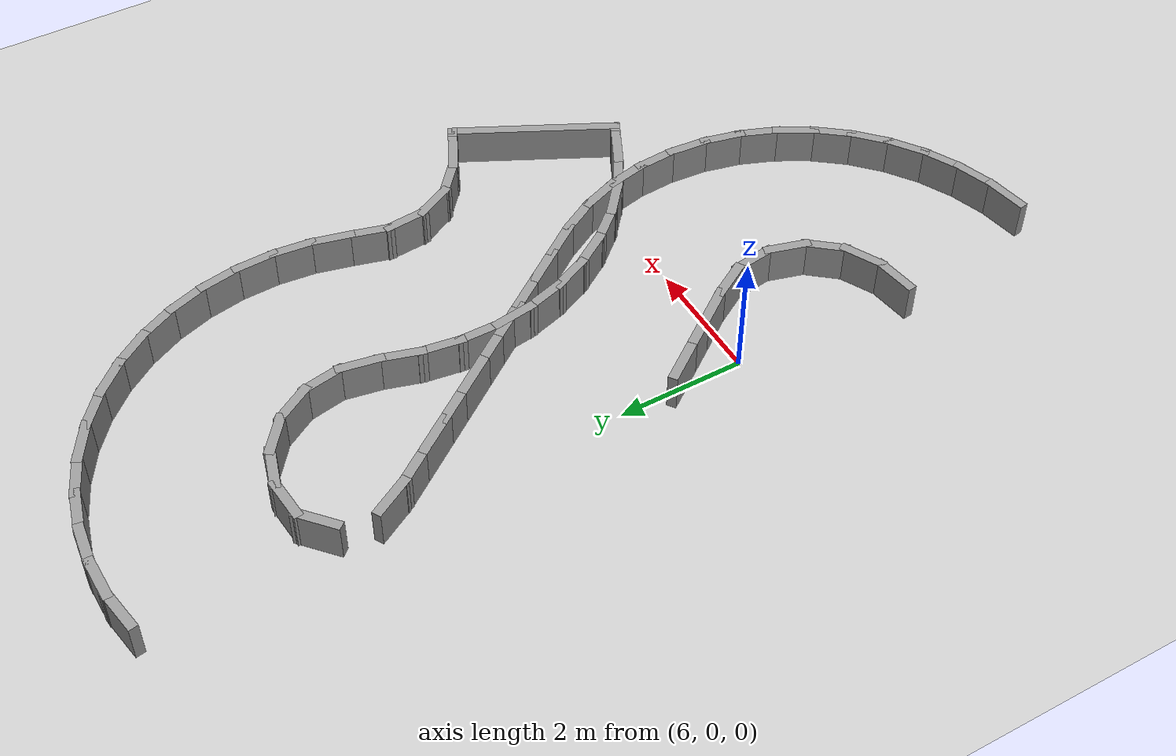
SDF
<sdf version="1.7">
 <world name="default">
  <model name="ground_plane">
   <static>1</static>
   <link name="link">
    <collision name="collision">
     <geometry><plane><normal>0 0 1</normal><size>100 100</size></plane></geometry>
     <surface><friction><ode><mu>100</mu><mu2>50</mu2></ode></friction></surface>
    </collision>
    <visual name="visual">
     <cast_shadows>0</cast_shadows>
     <geometry><plane><normal>0 0 1</normal><size>100 100</size></plane></geometry>
     <material>
      <script><uri>file://media/materials/scripts/gazebo.material</uri><name>Gazebo/Grey</name></script>
     </material>
    </visual>
   </link>
  </model>
  <model name="rand_turn_02">
   <link name="Wall_26">
    <collision name="Wall_26_Collision">
     <geometry><box><size>0.7493 0.1500 0.6000</size></box></geometry>
     <pose>0 0 0.3000 0 -0 0</pose>
    </collision>
    <visual name="Wall_26_Visual">
     <pose>0 0 0.3000 0 -0 0</pose>
     <geometry><box><size>0.7493 0.1500 0.6000</size></box></geometry>
     <material>
      <script><uri>file://media/materials/scripts/gazebo.material</uri><name>Gazebo/Grey</name></script>
      <ambient>1 1 1 1</ambient>
     </material>
    </visual>
    <pose>5.9020 -2.6663 0 0 -0 0.13148</pose>
   </link>
   <link name="Wall_27">
    <collision name="Wall_27_Collision">
     <geometry><box><size>0.7457 0.1500 0.6000</size></box></geometry>
     <pose>0 0 0.3000 0 -0 0</pose>
    </collision>
    <visual name="Wall_27_Visual">
     <pose>0 0 0.3000 0 -0 0</pose>
     <geometry><box><size>0.7457 0.1500 0.6000</size></box></geometry>
     <material>
      <script><uri>file://media/materials/scripts/gazebo.material</uri><name>Gazebo/Grey</name></script>
      <ambient>1 1 1 1</ambient>
     </material>
    </visual>
    <pose>6.4657 -2.4941 0 0 -0 0.46226</pose>
   </link>
   <link name="Wall_28">
    <collision name="Wall_28_Collision">
     <geometry><box><size>0.7457 0.1500 0.6000</size></box></geometry>
     <pose>0 0 0.3000 0 -0 0</pose>
    </collision>
    <visual name="Wall_28_Visual">
     <pose>0 0 0.3000 0 -0 0</pose>
     <geometry><box><size>0.7457 0.1500 0.6000</size></box></geometry>
     <material>
      <script><uri>file://media/materials/scripts/gazebo.material</uri><name>Gazebo/Grey</name></script>
      <ambient>1 1 1 1</ambient>
     </material>
    </visual>
    <pose>6.9225 -2.1322 0 0 -0 0.87773</pose>
   </link>
   <link name="Wall_29">
    <collision name="Wall_29_Collision">
     <geometry><box><size>0.7457 0.1500 0.6000</size></box></geometry>
     <pose>0 0 0.3000 0 -0 0</pose>
    </collision>
    <visual name="Wall_29_Visual">
     <pose>0 0 0.3000 0 -0 0</pose>
     <geometry><box><size>0.7457 0.1500 0.6000</size></box></geometry>
     <material>
      <script><uri>file://media/materials/scripts/gazebo.material</uri><name>Gazebo/Grey</name></script>
      <ambient>1 1 1 1</ambient>
     </material>
    </visual>
    <pose>7.1945 -1.6167 0 0 -0 1.29283</pose>
   </link>
   <link name="Wall_30">
    <collision name="Wall_30_Collision">
     <geometry><box><size>0.7457 0.1500 0.6000</size></box></geometry>
     <pose>0 0 0.3000 0 -0 0</pose>
    </collision>
    <visual name="Wall_30_Visual">
     <pose>0 0 0.3000 0 -0 0</pose>
     <geometry><box><size>0.7457 0.1500 0.6000</size></box></geometry>
     <material>
      <script><uri>file://media/materials/scripts/gazebo.material</uri><name>Gazebo/Grey</name></script>
      <ambient>1 1 1 1</ambient>
     </material>
    </visual>
    <pose>7.2356 -1.0352 0 0 -0 1.70773</pose>
   </link>
   <link name="Wall_31">
    <collision name="Wall_31_Collision">
     <geometry><box><size>0.7473 0.1500 0.6000</size></box></geometry>
     <pose>0 0 0.3000 0 -0 0</pose>
    </collision>
    <visual name="Wall_31_Visual">
     <pose>0 0 0.3000 0 -0 0</pose>
     <geometry><box><size>0.7473 0.1500 0.6000</size></box></geometry>
     <material>
      <script><uri>file://media/materials/scripts/gazebo.material</uri><name>Gazebo/Grey</name></script>
      <ambient>1 1 1 1</ambient>
     </material>
    </visual>
    <pose>7.0434 -0.4829 0 0 -0 2.10306</pose>
   </link>
   <link name="Wall_32">
    <collision name="Wall_32_Collision">
     <geometry><box><size>0.7500 0.1500 0.6000</size></box></geometry>
     <pose>0 0 0.3000 0 -0 0</pose>
    </collision>
    <visual name="Wall_32_Visual">
     <pose>0 0 0.3000 0 -0 0</pose>
     <geometry><box><size>0.7500 0.1500 0.6000</size></box></geometry>
     <material>
      <script><uri>file://media/materials/scripts/gazebo.material</uri><name>Gazebo/Grey</name></script>
      <ambient>1 1 1 1</ambient>
     </material>
    </visual>
    <pose>6.7163 0.0177 0 0 -0 2.19589</pose>
   </link>
   <link name="Wall_33">
    <collision name="Wall_33_Collision">
     <geometry><box><size>0.7500 0.1500 0.6000</size></box></geometry>
     <pose>0 0 0.3000 0 -0 0</pose>
    </collision>
    <visual name="Wall_33_Visual">
     <pose>0 0 0.3000 0 -0 0</pose>
     <geometry><box><size>0.7500 0.1500 0.6000</size></box></geometry>
     <material>
      <script><uri>file://media/materials/scripts/gazebo.material</uri><name>Gazebo/Grey</name></script>
      <ambient>1 1 1 1</ambient>
     </material>
    </visual>
    <pose>6.3652 0.5043 0 0 -0 2.19589</pose>
   </link>
   <link name="Wall_34">
    <collision name="Wall_34_Collision">
     <geometry><box><size>0.7500 0.1500 0.6000</size></box></geometry>
     <pose>0 0 0.3000 0 -0 0</pose>
    </collision>
    <visual name="Wall_34_Visual">
     <pose>0 0 0.3000 0 -0 0</pose>
     <geometry><box><size>0.7500 0.1500 0.6000</size></box></geometry>
     <material>
      <script><uri>file://media/materials/scripts/gazebo.material</uri><name>Gazebo/Grey</name></script>
      <ambient>1 1 1 1</ambient>
     </material>
    </visual>
    <pose>6.0141 0.9908 0 0 -0 2.19589</pose>
   </link>
   <link name="Wall_52">
    <collision name="Wall_52_Collision">
     <geometry><box><size>0.7492 0.1500 0.6000</size></box></geometry>
     <pose>0 0 0.3000 0 -0 0</pose>
    </collision>
    <visual name="Wall_52_Visual">
     <pose>0 0 0.3000 0 -0 0</pose>
     <geometry><box><size>0.7492 0.1500 0.6000</size></box></geometry>
     <material>
      <script><uri>file://media/materials/scripts/gazebo.material</uri><name>Gazebo/Grey</name></script>
      <ambient>1 1 1 1</ambient>
     </material>
    </visual>
    <pose>5.9951 9.4799 0 0 -0 0.16792</pose>
   </link>
   <link name="Wall_53">
    <collision name="Wall_53_Collision">
     <geometry><box><size>0.7495 0.1500 0.6000</size></box></geometry>
     <pose>0 0 0.3000 0 -0 0</pose>
    </collision>
    <visual name="Wall_53_Visual">
     <pose>0 0 0.3000 0 -0 0</pose>
     <geometry><box><size>0.7495 0.1500 0.6000</size></box></geometry>
     <material>
      <script><uri>file://media/materials/scripts/gazebo.material</uri><name>Gazebo/Grey</name></script>
      <ambient>1 1 1 1</ambient>
     </material>
    </visual>
    <pose>6.5902 9.5350 0 0 -0 0.01663</pose>
   </link>
   <link name="Wall_54">
    <collision name="Wall_54_Collision">
     <geometry><box><size>0.7495 0.1500 0.6000</size></box></geometry>
     <pose>0 0 0.3000 0 -0 0</pose>
    </collision>
    <visual name="Wall_54_Visual">
     <pose>0 0 0.3000 0 -0 0</pose>
     <geometry><box><size>0.7495 0.1500 0.6000</size></box></geometry>
     <material>
      <script><uri>file://media/materials/scripts/gazebo.material</uri><name>Gazebo/Grey</name></script>
      <ambient>1 1 1 1</ambient>
     </material>
    </visual>
    <pose>7.1873 9.5030 0 0 -0 -0.12383</pose>
   </link>
   <link name="Wall_55">
    <collision name="Wall_55_Collision">
     <geometry><box><size>0.7495 0.1500 0.6000</size></box></geometry>
     <pose>0 0 0.3000 0 -0 0</pose>
    </collision>
    <visual name="Wall_55_Visual">
     <pose>0 0 0.3000 0 -0 0</pose>
     <geometry><box><size>0.7495 0.1500 0.6000</size></box></geometry>
     <material>
      <script><uri>file://media/materials/scripts/gazebo.material</uri><name>Gazebo/Grey</name></script>
      <ambient>1 1 1 1</ambient>
     </material>
    </visual>
    <pose>7.7741 9.3876 0 0 -0 -0.26429</pose>
   </link>
   <link name="Wall_56">
    <collision name="Wall_56_Collision">
     <geometry><box><size>0.7495 0.1500 0.6000</size></box></geometry>
     <pose>0 0 0.3000 0 -0 0</pose>
    </collision>
    <visual name="Wall_56_Visual">
     <pose>0 0 0.3000 0 -0 0</pose>
     <geometry><box><size>0.7495 0.1500 0.6000</size></box></geometry>
     <material>
      <script><uri>file://media/materials/scripts/gazebo.material</uri><name>Gazebo/Grey</name></script>
      <ambient>1 1 1 1</ambient>
     </material>
    </visual>
    <pose>8.3389 9.1913 0 0 -0 -0.40475</pose>
   </link>
   <link name="Wall_57">
    <collision name="Wall_57_Collision">
     <geometry><box><size>0.7495 0.1500 0.6000</size></box></geometry>
     <pose>0 0 0.3000 0 -0 0</pose>
    </collision>
    <visual name="Wall_57_Visual">
     <pose>0 0 0.3000 0 -0 0</pose>
     <geometry><box><size>0.7495 0.1500 0.6000</size></box></geometry>
     <material>
      <script><uri>file://media/materials/scripts/gazebo.material</uri><name>Gazebo/Grey</name></script>
      <ambient>1 1 1 1</ambient>
     </material>
    </visual>
    <pose>8.8706 8.9176 0 0 -0 -0.54607</pose>
   </link>
   <link name="Wall_58">
    <collision name="Wall_58_Collision">
     <geometry><box><size>0.7495 0.1500 0.6000</size></box></geometry>
     <pose>0 0 0.3000 0 -0 0</pose>
    </collision>
    <visual name="Wall_58_Visual">
     <pose>0 0 0.3000 0 -0 0</pose>
     <geometry><box><size>0.7495 0.1500 0.6000</size></box></geometry>
     <material>
      <script><uri>file://media/materials/scripts/gazebo.material</uri><name>Gazebo/Grey</name></script>
      <ambient>1 1 1 1</ambient>
     </material>
    </visual>
    <pose>9.3585 8.5718 0 0 -0 -0.68702</pose>
   </link>
   <link name="Wall_59">
    <collision name="Wall_59_Collision">
     <geometry><box><size>0.7495 0.1500 0.6000</size></box></geometry>
     <pose>0 0 0.3000 0 -0 0</pose>
    </collision>
    <visual name="Wall_59_Visual">
     <pose>0 0 0.3000 0 -0 0</pose>
     <geometry><box><size>0.7495 0.1500 0.6000</size></box></geometry>
     <material>
      <script><uri>file://media/materials/scripts/gazebo.material</uri><name>Gazebo/Grey</name></script>
      <ambient>1 1 1 1</ambient>
     </material>
    </visual>
    <pose>9.7931 8.1610 0 0 -0 -0.82748</pose>
   </link>
   <link name="Wall_60">
    <collision name="Wall_60_Collision">
     <geometry><box><size>0.7495 0.1500 0.6000</size></box></geometry>
     <pose>0 0 0.3000 0 -0 0</pose>
    </collision>
    <visual name="Wall_60_Visual">
     <pose>0 0 0.3000 0 -0 0</pose>
     <geometry><box><size>0.7495 0.1500 0.6000</size></box></geometry>
     <material>
      <script><uri>file://media/materials/scripts/gazebo.material</uri><name>Gazebo/Grey</name></script>
      <ambient>1 1 1 1</ambient>
     </material>
    </visual>
    <pose>10.1659 7.6935 0 0 -0 -0.96794</pose>
   </link>
   <link name="Wall_61">
    <collision name="Wall_61_Collision">
     <geometry><box><size>0.7495 0.1500 0.6000</size></box></geometry>
     <pose>0 0 0.3000 0 -0 0</pose>
    </collision>
    <visual name="Wall_61_Visual">
     <pose>0 0 0.3000 0 -0 0</pose>
     <geometry><box><size>0.7495 0.1500 0.6000</size></box></geometry>
     <material>
      <script><uri>file://media/materials/scripts/gazebo.material</uri><name>Gazebo/Grey</name></script>
      <ambient>1 1 1 1</ambient>
     </material>
    </visual>
    <pose>10.4695 7.1783 0 0 -0 -1.10840</pose>
   </link>
   <link name="Wall_62">
    <collision name="Wall_62_Collision">
     <geometry><box><size>0.7495 0.1500 0.6000</size></box></geometry>
     <pose>0 0 0.3000 0 -0 0</pose>
    </collision>
    <visual name="Wall_62_Visual">
     <pose>0 0 0.3000 0 -0 0</pose>
     <geometry><box><size>0.7495 0.1500 0.6000</size></box></geometry>
     <material>
      <script><uri>file://media/materials/scripts/gazebo.material</uri><name>Gazebo/Grey</name></script>
      <ambient>1 1 1 1</ambient>
     </material>
    </visual>
    <pose>10.6981 6.6257 0 0 -0 -1.24886</pose>
   </link>
   <link name="Wall_63">
    <collision name="Wall_63_Collision">
     <geometry><box><size>0.7495 0.1500 0.6000</size></box></geometry>
     <pose>0 0 0.3000 0 -0 0</pose>
    </collision>
    <visual name="Wall_63_Visual">
     <pose>0 0 0.3000 0 -0 0</pose>
     <geometry><box><size>0.7495 0.1500 0.6000</size></box></geometry>
     <material>
      <script><uri>file://media/materials/scripts/gazebo.material</uri><name>Gazebo/Grey</name></script>
      <ambient>1 1 1 1</ambient>
     </material>
    </visual>
    <pose>10.8468 6.0465 0 0 -0 -1.39021</pose>
   </link>
   <link name="Wall_64">
    <collision name="Wall_64_Collision">
     <geometry><box><size>0.7495 0.1500 0.6000</size></box></geometry>
     <pose>0 0 0.3000 0 -0 0</pose>
    </collision>
    <visual name="Wall_64_Visual">
     <pose>0 0 0.3000 0 -0 0</pose>
     <geometry><box><size>0.7495 0.1500 0.6000</size></box></geometry>
     <material>
      <script><uri>file://media/materials/scripts/gazebo.material</uri><name>Gazebo/Grey</name></script>
      <ambient>1 1 1 1</ambient>
     </material>
    </visual>
    <pose>10.9125 5.4521 0 0 -0 -1.53113</pose>
   </link>
   <link name="Wall_65">
    <collision name="Wall_65_Collision">
     <geometry><box><size>0.7495 0.1500 0.6000</size></box></geometry>
     <pose>0 0 0.3000 0 -0 0</pose>
    </collision>
    <visual name="Wall_65_Visual">
     <pose>0 0 0.3000 0 -0 0</pose>
     <geometry><box><size>0.7495 0.1500 0.6000</size></box></geometry>
     <material>
      <script><uri>file://media/materials/scripts/gazebo.material</uri><name>Gazebo/Grey</name></script>
      <ambient>1 1 1 1</ambient>
     </material>
    </visual>
    <pose>10.8942 4.8544 0 0 -0 -1.67159</pose>
   </link>
   <link name="Wall_66">
    <collision name="Wall_66_Collision">
     <geometry><box><size>0.7495 0.1500 0.6000</size></box></geometry>
     <pose>0 0 0.3000 0 -0 0</pose>
    </collision>
    <visual name="Wall_66_Visual">
     <pose>0 0 0.3000 0 -0 0</pose>
     <geometry><box><size>0.7495 0.1500 0.6000</size></box></geometry>
     <material>
      <script><uri>file://media/materials/scripts/gazebo.material</uri><name>Gazebo/Grey</name></script>
      <ambient>1 1 1 1</ambient>
     </material>
    </visual>
    <pose>10.7924 4.2651 0 0 -0 -1.81205</pose>
   </link>
   <link name="Wall_67">
    <collision name="Wall_67_Collision">
     <geometry><box><size>0.7483 0.1500 0.6000</size></box></geometry>
     <pose>0 0 0.3000 0 -0 0</pose>
    </collision>
    <visual name="Wall_67_Visual">
     <pose>0 0 0.3000 0 -0 0</pose>
     <geometry><box><size>0.7483 0.1500 0.6000</size></box></geometry>
     <material>
      <script><uri>file://media/materials/scripts/gazebo.material</uri><name>Gazebo/Grey</name></script>
      <ambient>1 1 1 1</ambient>
     </material>
    </visual>
    <pose>10.6406 3.6859 0 0 -0 -1.84228</pose>
   </link>
   <link name="Wall_68">
    <collision name="Wall_68_Collision">
     <geometry><box><size>0.7461 0.1500 0.6000</size></box></geometry>
     <pose>0 0 0.3000 0 -0 0</pose>
    </collision>
    <visual name="Wall_68_Visual">
     <pose>0 0 0.3000 0 -0 0</pose>
     <geometry><box><size>0.7461 0.1500 0.6000</size></box></geometry>
     <material>
      <script><uri>file://media/materials/scripts/gazebo.material</uri><name>Gazebo/Grey</name></script>
      <ambient>1 1 1 1</ambient>
     </material>
    </visual>
    <pose>10.5858 3.1008 0 0 -0 -1.48540</pose>
   </link>
   <link name="Wall_69">
    <collision name="Wall_69_Collision">
     <geometry><box><size>0.7461 0.1500 0.6000</size></box></geometry>
     <pose>0 0 0.3000 0 -0 0</pose>
    </collision>
    <visual name="Wall_69_Visual">
     <pose>0 0 0.3000 0 -0 0</pose>
     <geometry><box><size>0.7461 0.1500 0.6000</size></box></geometry>
     <material>
      <script><uri>file://media/materials/scripts/gazebo.material</uri><name>Gazebo/Grey</name></script>
      <ambient>1 1 1 1</ambient>
     </material>
    </visual>
    <pose>10.7483 2.5391 0 0 -0 -1.09309</pose>
   </link>
   <link name="Wall_70">
    <collision name="Wall_70_Collision">
     <geometry><box><size>0.7461 0.1500 0.6000</size></box></geometry>
     <pose>0 0 0.3000 0 -0 0</pose>
    </collision>
    <visual name="Wall_70_Visual">
     <pose>0 0 0.3000 0 -0 0</pose>
     <geometry><box><size>0.7461 0.1500 0.6000</size></box></geometry>
     <material>
      <script><uri>file://media/materials/scripts/gazebo.material</uri><name>Gazebo/Grey</name></script>
      <ambient>1 1 1 1</ambient>
     </material>
    </visual>
    <pose>11.1131 2.0822 0 0 -0 -0.70078</pose>
   </link>
   <link name="Wall_71">
    <collision name="Wall_71_Collision">
     <geometry><box><size>0.7500 0.1500 0.6000</size></box></geometry>
     <pose>0 0 0.3000 0 -0 0</pose>
    </collision>
    <visual name="Wall_71_Visual">
     <pose>0 0 0.3000 0 -0 0</pose>
     <geometry><box><size>0.7500 0.1500 0.6000</size></box></geometry>
     <material>
      <script><uri>file://media/materials/scripts/gazebo.material</uri><name>Gazebo/Grey</name></script>
      <ambient>1 1 1 1</ambient>
     </material>
    </visual>
    <pose>11.6080 1.7535 0 0 -0 -0.47263</pose>
   </link>
   <link name="Wall_72">
    <collision name="Wall_72_Collision">
     <geometry><box><size>0.3505 0.1500 0.6000</size></box></geometry>
     <pose>0 0 0.3000 0 -0 0</pose>
    </collision>
    <visual name="Wall_72_Visual">
     <pose>0 0 0.3000 0 -0 0</pose>
     <geometry><box><size>0.3505 0.1500 0.6000</size></box></geometry>
     <material>
      <script><uri>file://media/materials/scripts/gazebo.material</uri><name>Gazebo/Grey</name></script>
      <ambient>1 1 1 1</ambient>
     </material>
    </visual>
    <pose>11.9644 1.5714 0 0 -0 -0.47159</pose>
   </link>
   <link name="Wall_102">
    <collision name="Wall_102_Collision">
     <geometry><box><size>0.7494 0.1500 0.6000</size></box></geometry>
     <pose>0 0 0.3000 0 -0 0</pose>
    </collision>
    <visual name="Wall_102_Visual">
     <pose>0 0 0.3000 0 -0 0</pose>
     <geometry><box><size>0.7494 0.1500 0.6000</size></box></geometry>
     <material>
      <script><uri>file://media/materials/scripts/gazebo.material</uri><name>Gazebo/Grey</name></script>
      <ambient>1 1 1 1</ambient>
     </material>
    </visual>
    <pose>6.4742 -5.2172 0 0 -0 0.15885</pose>
   </link>
   <link name="Wall_103">
    <collision name="Wall_103_Collision">
     <geometry><box><size>0.7494 0.1500 0.6000</size></box></geometry>
     <pose>0 0 0.3000 0 -0 0</pose>
    </collision>
    <visual name="Wall_103_Visual">
     <pose>0 0 0.3000 0 -0 0</pose>
     <geometry><box><size>0.7494 0.1500 0.6000</size></box></geometry>
     <material>
      <script><uri>file://media/materials/scripts/gazebo.material</uri><name>Gazebo/Grey</name></script>
      <ambient>1 1 1 1</ambient>
     </material>
    </visual>
    <pose>7.0559 -5.0792 0 0 -0 0.30685</pose>
   </link>
   <link name="Wall_104">
    <collision name="Wall_104_Collision">
     <geometry><box><size>0.7495 0.1500 0.6000</size></box></geometry>
     <pose>0 0 0.3000 0 -0 0</pose>
    </collision>
    <visual name="Wall_104_Visual">
     <pose>0 0 0.3000 0 -0 0</pose>
     <geometry><box><size>0.7495 0.1500 0.6000</size></box></geometry>
     <material>
      <script><uri>file://media/materials/scripts/gazebo.material</uri><name>Gazebo/Grey</name></script>
      <ambient>1 1 1 1</ambient>
     </material>
    </visual>
    <pose>7.6109 -4.8570 0 0 -0 0.45492</pose>
   </link>
   <link name="Wall_105">
    <collision name="Wall_105_Collision">
     <geometry><box><size>0.7495 0.1500 0.6000</size></box></geometry>
     <pose>0 0 0.3000 0 -0 0</pose>
    </collision>
    <visual name="Wall_105_Visual">
     <pose>0 0 0.3000 0 -0 0</pose>
     <geometry><box><size>0.7495 0.1500 0.6000</size></box></geometry>
     <material>
      <script><uri>file://media/materials/scripts/gazebo.material</uri><name>Gazebo/Grey</name></script>
      <ambient>1 1 1 1</ambient>
     </material>
    </visual>
    <pose>8.1269 -4.5552 0 0 -0 0.60352</pose>
   </link>
   <link name="Wall_106">
    <collision name="Wall_106_Collision">
     <geometry><box><size>0.7495 0.1500 0.6000</size></box></geometry>
     <pose>0 0 0.3000 0 -0 0</pose>
    </collision>
    <visual name="Wall_106_Visual">
     <pose>0 0 0.3000 0 -0 0</pose>
     <geometry><box><size>0.7495 0.1500 0.6000</size></box></geometry>
     <material>
      <script><uri>file://media/materials/scripts/gazebo.material</uri><name>Gazebo/Grey</name></script>
      <ambient>1 1 1 1</ambient>
     </material>
    </visual>
    <pose>8.5927 -4.1804 0 0 -0 0.75170</pose>
   </link>
   <link name="Wall_107">
    <collision name="Wall_107_Collision">
     <geometry><box><size>0.7494 0.1500 0.6000</size></box></geometry>
     <pose>0 0 0.3000 0 -0 0</pose>
    </collision>
    <visual name="Wall_107_Visual">
     <pose>0 0 0.3000 0 -0 0</pose>
     <geometry><box><size>0.7494 0.1500 0.6000</size></box></geometry>
     <material>
      <script><uri>file://media/materials/scripts/gazebo.material</uri><name>Gazebo/Grey</name></script>
      <ambient>1 1 1 1</ambient>
     </material>
    </visual>
    <pose>8.9980 -3.7410 0 0 -0 0.89978</pose>
   </link>
   <link name="Wall_108">
    <collision name="Wall_108_Collision">
     <geometry><box><size>0.7494 0.1500 0.6000</size></box></geometry>
     <pose>0 0 0.3000 0 -0 0</pose>
    </collision>
    <visual name="Wall_108_Visual">
     <pose>0 0 0.3000 0 -0 0</pose>
     <geometry><box><size>0.7494 0.1500 0.6000</size></box></geometry>
     <material>
      <script><uri>file://media/materials/scripts/gazebo.material</uri><name>Gazebo/Grey</name></script>
      <ambient>1 1 1 1</ambient>
     </material>
    </visual>
    <pose>9.3340 -3.2466 0 0 -0 1.04785</pose>
   </link>
   <link name="Wall_109">
    <collision name="Wall_109_Collision">
     <geometry><box><size>0.7494 0.1500 0.6000</size></box></geometry>
     <pose>0 0 0.3000 0 -0 0</pose>
    </collision>
    <visual name="Wall_109_Visual">
     <pose>0 0 0.3000 0 -0 0</pose>
     <geometry><box><size>0.7494 0.1500 0.6000</size></box></geometry>
     <material>
      <script><uri>file://media/materials/scripts/gazebo.material</uri><name>Gazebo/Grey</name></script>
      <ambient>1 1 1 1</ambient>
     </material>
    </visual>
    <pose>9.5934 -2.7081 0 0 -0 1.19593</pose>
   </link>
   <link name="Wall_110">
    <collision name="Wall_110_Collision">
     <geometry><box><size>0.7494 0.1500 0.6000</size></box></geometry>
     <pose>0 0 0.3000 0 -0 0</pose>
    </collision>
    <visual name="Wall_110_Visual">
     <pose>0 0 0.3000 0 -0 0</pose>
     <geometry><box><size>0.7494 0.1500 0.6000</size></box></geometry>
     <material>
      <script><uri>file://media/materials/scripts/gazebo.material</uri><name>Gazebo/Grey</name></script>
      <ambient>1 1 1 1</ambient>
     </material>
    </visual>
    <pose>9.7706 -2.1372 0 0 -0 1.34400</pose>
   </link>
   <link name="Wall_111">
    <collision name="Wall_111_Collision">
     <geometry><box><size>0.7494 0.1500 0.6000</size></box></geometry>
     <pose>0 0 0.3000 0 -0 0</pose>
    </collision>
    <visual name="Wall_111_Visual">
     <pose>0 0 0.3000 0 -0 0</pose>
     <geometry><box><size>0.7494 0.1500 0.6000</size></box></geometry>
     <material>
      <script><uri>file://media/materials/scripts/gazebo.material</uri><name>Gazebo/Grey</name></script>
      <ambient>1 1 1 1</ambient>
     </material>
    </visual>
    <pose>9.8615 -1.5464 0 0 -0 1.49208</pose>
   </link>
   <link name="Wall_112">
    <collision name="Wall_112_Collision">
     <geometry><box><size>0.7494 0.1500 0.6000</size></box></geometry>
     <pose>0 0 0.3000 0 -0 0</pose>
    </collision>
    <visual name="Wall_112_Visual">
     <pose>0 0 0.3000 0 -0 0</pose>
     <geometry><box><size>0.7494 0.1500 0.6000</size></box></geometry>
     <material>
      <script><uri>file://media/materials/scripts/gazebo.material</uri><name>Gazebo/Grey</name></script>
      <ambient>1 1 1 1</ambient>
     </material>
    </visual>
    <pose>9.8643 -0.9486 0 0 -0 1.64016</pose>
   </link>
   <link name="Wall_113">
    <collision name="Wall_113_Collision">
     <geometry><box><size>0.7494 0.1500 0.6000</size></box></geometry>
     <pose>0 0 0.3000 0 -0 0</pose>
    </collision>
    <visual name="Wall_113_Visual">
     <pose>0 0 0.3000 0 -0 0</pose>
     <geometry><box><size>0.7494 0.1500 0.6000</size></box></geometry>
     <material>
      <script><uri>file://media/materials/scripts/gazebo.material</uri><name>Gazebo/Grey</name></script>
      <ambient>1 1 1 1</ambient>
     </material>
    </visual>
    <pose>9.7789 -0.3570 0 0 -0 1.78823</pose>
   </link>
   <link name="Wall_114">
    <collision name="Wall_114_Collision">
     <geometry><box><size>0.7494 0.1500 0.6000</size></box></geometry>
     <pose>0 0 0.3000 0 -0 0</pose>
    </collision>
    <visual name="Wall_114_Visual">
     <pose>0 0 0.3000 0 -0 0</pose>
     <geometry><box><size>0.7494 0.1500 0.6000</size></box></geometry>
     <material>
      <script><uri>file://media/materials/scripts/gazebo.material</uri><name>Gazebo/Grey</name></script>
      <ambient>1 1 1 1</ambient>
     </material>
    </visual>
    <pose>9.6071 0.2155 0 0 -0 1.93631</pose>
   </link>
   <link name="Wall_115">
    <collision name="Wall_115_Collision">
     <geometry><box><size>0.7494 0.1500 0.6000</size></box></geometry>
     <pose>0 0 0.3000 0 -0 0</pose>
    </collision>
    <visual name="Wall_115_Visual">
     <pose>0 0 0.3000 0 -0 0</pose>
     <geometry><box><size>0.7494 0.1500 0.6000</size></box></geometry>
     <material>
      <script><uri>file://media/materials/scripts/gazebo.material</uri><name>Gazebo/Grey</name></script>
      <ambient>1 1 1 1</ambient>
     </material>
    </visual>
    <pose>9.3527 0.7564 0 0 -0 2.08456</pose>
   </link>
   <link name="Wall_116">
    <collision name="Wall_116_Collision">
     <geometry><box><size>0.7500 0.1500 0.6000</size></box></geometry>
     <pose>0 0 0.3000 0 -0 0</pose>
    </collision>
    <visual name="Wall_116_Visual">
     <pose>0 0 0.3000 0 -0 0</pose>
     <geometry><box><size>0.7500 0.1500 0.6000</size></box></geometry>
     <material>
      <script><uri>file://media/materials/scripts/gazebo.material</uri><name>Gazebo/Grey</name></script>
      <ambient>1 1 1 1</ambient>
     </material>
    </visual>
    <pose>9.0308 1.2614 0 0 -0 2.19210</pose>
   </link>
   <link name="Wall_117">
    <collision name="Wall_117_Collision">
     <geometry><box><size>0.7500 0.1500 0.6000</size></box></geometry>
     <pose>0 0 0.3000 0 -0 0</pose>
    </collision>
    <visual name="Wall_117_Visual">
     <pose>0 0 0.3000 0 -0 0</pose>
     <geometry><box><size>0.7500 0.1500 0.6000</size></box></geometry>
     <material>
      <script><uri>file://media/materials/scripts/gazebo.material</uri><name>Gazebo/Grey</name></script>
      <ambient>1 1 1 1</ambient>
     </material>
    </visual>
    <pose>8.6806 1.7485 0 0 -0 2.19589</pose>
   </link>
   <link name="Wall_118">
    <collision name="Wall_118_Collision">
     <geometry><box><size>0.7500 0.1500 0.6000</size></box></geometry>
     <pose>0 0 0.3000 0 -0 0</pose>
    </collision>
    <visual name="Wall_118_Visual">
     <pose>0 0 0.3000 0 -0 0</pose>
     <geometry><box><size>0.7500 0.1500 0.6000</size></box></geometry>
     <material>
      <script><uri>file://media/materials/scripts/gazebo.material</uri><name>Gazebo/Grey</name></script>
      <ambient>1 1 1 1</ambient>
     </material>
    </visual>
    <pose>8.3295 2.2351 0 0 -0 2.19589</pose>
   </link>
   <link name="Wall_119">
    <collision name="Wall_119_Collision">
     <geometry><box><size>0.7500 0.1500 0.6000</size></box></geometry>
     <pose>0 0 0.3000 0 -0 0</pose>
    </collision>
    <visual name="Wall_119_Visual">
     <pose>0 0 0.3000 0 -0 0</pose>
     <geometry><box><size>0.7500 0.1500 0.6000</size></box></geometry>
     <material>
      <script><uri>file://media/materials/scripts/gazebo.material</uri><name>Gazebo/Grey</name></script>
      <ambient>1 1 1 1</ambient>
     </material>
    </visual>
    <pose>7.9784 2.7216 0 0 -0 2.19589</pose>
   </link>
   <link name="Wall_120">
    <collision name="Wall_120_Collision">
     <geometry><box><size>0.7500 0.1500 0.6000</size></box></geometry>
     <pose>0 0 0.3000 0 -0 0</pose>
    </collision>
    <visual name="Wall_120_Visual">
     <pose>0 0 0.3000 0 -0 0</pose>
     <geometry><box><size>0.7500 0.1500 0.6000</size></box></geometry>
     <material>
      <script><uri>file://media/materials/scripts/gazebo.material</uri><name>Gazebo/Grey</name></script>
      <ambient>1 1 1 1</ambient>
     </material>
    </visual>
    <pose>7.6273 3.2082 0 0 -0 2.19589</pose>
   </link>
   <link name="Wall_121">
    <collision name="Wall_121_Collision">
     <geometry><box><size>0.7500 0.1500 0.6000</size></box></geometry>
     <pose>0 0 0.3000 0 -0 0</pose>
    </collision>
    <visual name="Wall_121_Visual">
     <pose>0 0 0.3000 0 -0 0</pose>
     <geometry><box><size>0.7500 0.1500 0.6000</size></box></geometry>
     <material>
      <script><uri>file://media/materials/scripts/gazebo.material</uri><name>Gazebo/Grey</name></script>
      <ambient>1 1 1 1</ambient>
     </material>
    </visual>
    <pose>7.2762 3.6947 0 0 -0 2.19589</pose>
   </link>
   <link name="Wall_122">
    <collision name="Wall_122_Collision">
     <geometry><box><size>0.7500 0.1500 0.6000</size></box></geometry>
     <pose>0 0 0.3000 0 -0 0</pose>
    </collision>
    <visual name="Wall_122_Visual">
     <pose>0 0 0.3000 0 -0 0</pose>
     <geometry><box><size>0.7500 0.1500 0.6000</size></box></geometry>
     <material>
      <script><uri>file://media/materials/scripts/gazebo.material</uri><name>Gazebo/Grey</name></script>
      <ambient>1 1 1 1</ambient>
     </material>
    </visual>
    <pose>6.9251 4.1813 0 0 -0 2.19589</pose>
   </link>
   <link name="Wall_123">
    <collision name="Wall_123_Collision">
     <geometry><box><size>0.7500 0.1500 0.6000</size></box></geometry>
     <pose>0 0 0.3000 0 -0 0</pose>
    </collision>
    <visual name="Wall_123_Visual">
     <pose>0 0 0.3000 0 -0 0</pose>
     <geometry><box><size>0.7500 0.1500 0.6000</size></box></geometry>
     <material>
      <script><uri>file://media/materials/scripts/gazebo.material</uri><name>Gazebo/Grey</name></script>
      <ambient>1 1 1 1</ambient>
     </material>
    </visual>
    <pose>6.5740 4.6678 0 0 -0 2.19589</pose>
   </link>
   <link name="Wall_124">
    <collision name="Wall_124_Collision">
     <geometry><box><size>0.7500 0.1500 0.6000</size></box></geometry>
     <pose>0 0 0.3000 0 -0 0</pose>
    </collision>
    <visual name="Wall_124_Visual">
     <pose>0 0 0.3000 0 -0 0</pose>
     <geometry><box><size>0.7500 0.1500 0.6000</size></box></geometry>
     <material>
      <script><uri>file://media/materials/scripts/gazebo.material</uri><name>Gazebo/Grey</name></script>
      <ambient>1 1 1 1</ambient>
     </material>
    </visual>
    <pose>6.2229 5.1544 0 0 -0 2.19589</pose>
   </link>
   <link name="Wall_125">
    <collision name="Wall_125_Collision">
     <geometry><box><size>0.7450 0.1500 0.6000</size></box></geometry>
     <pose>0 0 0.3000 0 -0 0</pose>
    </collision>
    <visual name="Wall_125_Visual">
     <pose>0 0 0.3000 0 -0 0</pose>
     <geometry><box><size>0.7450 0.1500 0.6000</size></box></geometry>
     <material>
      <script><uri>file://media/materials/scripts/gazebo.material</uri><name>Gazebo/Grey</name></script>
      <ambient>1 1 1 1</ambient>
     </material>
    </visual>
    <pose>5.9003 5.6562 0 0 -0 2.08803</pose>
   </link>
   <link name="Wall_127">
    <collision name="Wall_127_Collision">
     <geometry><box><size>0.7370 0.1500 0.6000</size></box></geometry>
     <pose>0 0 0.3000 0 -0 0</pose>
    </collision>
    <visual name="Wall_127_Visual">
     <pose>0 0 0.3000 0 -0 0</pose>
     <geometry><box><size>0.7370 0.1500 0.6000</size></box></geometry>
     <material>
      <script><uri>file://media/materials/scripts/gazebo.material</uri><name>Gazebo/Grey</name></script>
      <ambient>1 1 1 1</ambient>
     </material>
    </visual>
    <pose>6.0508 6.6897 0 0 -0 0.71738</pose>
   </link>
   <link name="Wall_128">
    <collision name="Wall_128_Collision">
     <geometry><box><size>0.7447 0.1500 0.6000</size></box></geometry>
     <pose>0 0 0.3000 0 -0 0</pose>
    </collision>
    <visual name="Wall_128_Visual">
     <pose>0 0 0.3000 0 -0 0</pose>
     <geometry><box><size>0.7447 0.1500 0.6000</size></box></geometry>
     <material>
      <script><uri>file://media/materials/scripts/gazebo.material</uri><name>Gazebo/Grey</name></script>
      <ambient>1 1 1 1</ambient>
     </material>
    </visual>
    <pose>6.5684 6.9054 0 0 -0 0.07677</pose>
   </link>
   <link name="Wall_129">
    <collision name="Wall_129_Collision">
     <geometry><box><size>0.7467 0.1500 0.6000</size></box></geometry>
     <pose>0 0 0.3000 0 -0 0</pose>
    </collision>
    <visual name="Wall_129_Visual">
     <pose>0 0 0.3000 0 -0 0</pose>
     <geometry><box><size>0.7467 0.1500 0.6000</size></box></geometry>
     <material>
      <script><uri>file://media/materials/scripts/gazebo.material</uri><name>Gazebo/Grey</name></script>
      <ambient>1 1 1 1</ambient>
     </material>
    </visual>
    <pose>7.1496 6.8391 0 0 -0 -0.30342</pose>
   </link>
   <link name="Wall_130">
    <collision name="Wall_130_Collision">
     <geometry><box><size>0.7467 0.1500 0.6000</size></box></geometry>
     <pose>0 0 0.3000 0 -0 0</pose>
    </collision>
    <visual name="Wall_130_Visual">
     <pose>0 0 0.3000 0 -0 0</pose>
     <geometry><box><size>0.7467 0.1500 0.6000</size></box></geometry>
     <material>
      <script><uri>file://media/materials/scripts/gazebo.material</uri><name>Gazebo/Grey</name></script>
      <ambient>1 1 1 1</ambient>
     </material>
    </visual>
    <pose>7.6691 6.5658 0 0 -0 -0.66505</pose>
   </link>
   <link name="Wall_131">
    <collision name="Wall_131_Collision">
     <geometry><box><size>0.7467 0.1500 0.6000</size></box></geometry>
     <pose>0 0 0.3000 0 -0 0</pose>
    </collision>
    <visual name="Wall_131_Visual">
     <pose>0 0 0.3000 0 -0 0</pose>
     <geometry><box><size>0.7467 0.1500 0.6000</size></box></geometry>
     <material>
      <script><uri>file://media/materials/scripts/gazebo.material</uri><name>Gazebo/Grey</name></script>
      <ambient>1 1 1 1</ambient>
     </material>
    </visual>
    <pose>8.0583 6.1264 0 0 -0 -1.02703</pose>
   </link>
   <link name="Wall_132">
    <collision name="Wall_132_Collision">
     <geometry><box><size>0.7467 0.1500 0.6000</size></box></geometry>
     <pose>0 0 0.3000 0 -0 0</pose>
    </collision>
    <visual name="Wall_132_Visual">
     <pose>0 0 0.3000 0 -0 0</pose>
     <geometry><box><size>0.7467 0.1500 0.6000</size></box></geometry>
     <material>
      <script><uri>file://media/materials/scripts/gazebo.material</uri><name>Gazebo/Grey</name></script>
      <ambient>1 1 1 1</ambient>
     </material>
    </visual>
    <pose>8.2668 5.5777 0 0 -0 -1.38839</pose>
   </link>
   <link name="Wall_133">
    <collision name="Wall_133_Collision">
     <geometry><box><size>0.7467 0.1500 0.6000</size></box></geometry>
     <pose>0 0 0.3000 0 -0 0</pose>
    </collision>
    <visual name="Wall_133_Visual">
     <pose>0 0 0.3000 0 -0 0</pose>
     <geometry><box><size>0.7467 0.1500 0.6000</size></box></geometry>
     <material>
      <script><uri>file://media/materials/scripts/gazebo.material</uri><name>Gazebo/Grey</name></script>
      <ambient>1 1 1 1</ambient>
     </material>
    </visual>
    <pose>8.2677 4.9907 0 0 -0 -1.74983</pose>
   </link>
   <link name="Wall_134">
    <collision name="Wall_134_Collision">
     <geometry><box><size>0.7495 0.1500 0.6000</size></box></geometry>
     <pose>0 0 0.3000 0 -0 0</pose>
    </collision>
    <visual name="Wall_134_Visual">
     <pose>0 0 0.3000 0 -0 0</pose>
     <geometry><box><size>0.7495 0.1500 0.6000</size></box></geometry>
     <material>
      <script><uri>file://media/materials/scripts/gazebo.material</uri><name>Gazebo/Grey</name></script>
      <ambient>1 1 1 1</ambient>
     </material>
    </visual>
    <pose>8.1290 4.4099 0 0 -0 -1.86053</pose>
   </link>
   <link name="Wall_135">
    <collision name="Wall_135_Collision">
     <geometry><box><size>0.7494 0.1500 0.6000</size></box></geometry>
     <pose>0 0 0.3000 0 -0 0</pose>
    </collision>
    <visual name="Wall_135_Visual">
     <pose>0 0 0.3000 0 -0 0</pose>
     <geometry><box><size>0.7494 0.1500 0.6000</size></box></geometry>
     <material>
      <script><uri>file://media/materials/scripts/gazebo.material</uri><name>Gazebo/Grey</name></script>
      <ambient>1 1 1 1</ambient>
     </material>
    </visual>
    <pose>8.0000 3.8260 0 0 -0 -1.71596</pose>
   </link>
   <link name="Wall_136">
    <collision name="Wall_136_Collision">
     <geometry><box><size>0.7494 0.1500 0.6000</size></box></geometry>
     <pose>0 0 0.3000 0 -0 0</pose>
    </collision>
    <visual name="Wall_136_Visual">
     <pose>0 0 0.3000 0 -0 0</pose>
     <geometry><box><size>0.7494 0.1500 0.6000</size></box></geometry>
     <material>
      <script><uri>file://media/materials/scripts/gazebo.material</uri><name>Gazebo/Grey</name></script>
      <ambient>1 1 1 1</ambient>
     </material>
    </visual>
    <pose>7.9566 3.2298 0 0 -0 -1.57096</pose>
   </link>
   <link name="Wall_137">
    <collision name="Wall_137_Collision">
     <geometry><box><size>0.7494 0.1500 0.6000</size></box></geometry>
     <pose>0 0 0.3000 0 -0 0</pose>
    </collision>
    <visual name="Wall_137_Visual">
     <pose>0 0 0.3000 0 -0 0</pose>
     <geometry><box><size>0.7494 0.1500 0.6000</size></box></geometry>
     <material>
      <script><uri>file://media/materials/scripts/gazebo.material</uri><name>Gazebo/Grey</name></script>
      <ambient>1 1 1 1</ambient>
     </material>
    </visual>
    <pose>7.9998 2.6335 0 0 -0 -1.42595</pose>
   </link>
   <link name="Wall_138">
    <collision name="Wall_138_Collision">
     <geometry><box><size>0.7494 0.1500 0.6000</size></box></geometry>
     <pose>0 0 0.3000 0 -0 0</pose>
    </collision>
    <visual name="Wall_138_Visual">
     <pose>0 0 0.3000 0 -0 0</pose>
     <geometry><box><size>0.7494 0.1500 0.6000</size></box></geometry>
     <material>
      <script><uri>file://media/materials/scripts/gazebo.material</uri><name>Gazebo/Grey</name></script>
      <ambient>1 1 1 1</ambient>
     </material>
    </visual>
    <pose>8.1287 2.0497 0 0 -0 -1.28095</pose>
   </link>
   <link name="Wall_139">
    <collision name="Wall_139_Collision">
     <geometry><box><size>0.7494 0.1500 0.6000</size></box></geometry>
     <pose>0 0 0.3000 0 -0 0</pose>
    </collision>
    <visual name="Wall_139_Visual">
     <pose>0 0 0.3000 0 -0 0</pose>
     <geometry><box><size>0.7494 0.1500 0.6000</size></box></geometry>
     <material>
      <script><uri>file://media/materials/scripts/gazebo.material</uri><name>Gazebo/Grey</name></script>
      <ambient>1 1 1 1</ambient>
     </material>
    </visual>
    <pose>8.3406 1.4907 0 0 -0 -1.13594</pose>
   </link>
   <link name="Wall_140">
    <collision name="Wall_140_Collision">
     <geometry><box><size>0.7494 0.1500 0.6000</size></box></geometry>
     <pose>0 0 0.3000 0 -0 0</pose>
    </collision>
    <visual name="Wall_140_Visual">
     <pose>0 0 0.3000 0 -0 0</pose>
     <geometry><box><size>0.7494 0.1500 0.6000</size></box></geometry>
     <material>
      <script><uri>file://media/materials/scripts/gazebo.material</uri><name>Gazebo/Grey</name></script>
      <ambient>1 1 1 1</ambient>
     </material>
    </visual>
    <pose>8.6311 0.9681 0 0 -0 -0.99094</pose>
   </link>
   <link name="Wall_141">
    <collision name="Wall_141_Collision">
     <geometry><box><size>0.7495 0.1500 0.6000</size></box></geometry>
     <pose>0 0 0.3000 0 -0 0</pose>
    </collision>
    <visual name="Wall_141_Visual">
     <pose>0 0 0.3000 0 -0 0</pose>
     <geometry><box><size>0.7495 0.1500 0.6000</size></box></geometry>
     <material>
      <script><uri>file://media/materials/scripts/gazebo.material</uri><name>Gazebo/Grey</name></script>
      <ambient>1 1 1 1</ambient>
     </material>
    </visual>
    <pose>8.9941 0.4930 0 0 -0 -0.84593</pose>
   </link>
   <link name="Wall_142">
    <collision name="Wall_142_Collision">
     <geometry><box><size>0.7495 0.1500 0.6000</size></box></geometry>
     <pose>0 0 0.3000 0 -0 0</pose>
    </collision>
    <visual name="Wall_142_Visual">
     <pose>0 0 0.3000 0 -0 0</pose>
     <geometry><box><size>0.7495 0.1500 0.6000</size></box></geometry>
     <material>
      <script><uri>file://media/materials/scripts/gazebo.material</uri><name>Gazebo/Grey</name></script>
      <ambient>1 1 1 1</ambient>
     </material>
    </visual>
    <pose>9.4220 0.0755 0 0 -0 -0.70030</pose>
   </link>
   <link name="Wall_143">
    <collision name="Wall_143_Collision">
     <geometry><box><size>0.7495 0.1500 0.6000</size></box></geometry>
     <pose>0 0 0.3000 0 -0 0</pose>
    </collision>
    <visual name="Wall_143_Visual">
     <pose>0 0 0.3000 0 -0 0</pose>
     <geometry><box><size>0.7495 0.1500 0.6000</size></box></geometry>
     <material>
      <script><uri>file://media/materials/scripts/gazebo.material</uri><name>Gazebo/Grey</name></script>
      <ambient>1 1 1 1</ambient>
     </material>
    </visual>
    <pose>9.9059 -0.2756 0 0 -0 -0.55506</pose>
   </link>
   <link name="Wall_144">
    <collision name="Wall_144_Collision">
     <geometry><box><size>0.7500 0.1500 0.6000</size></box></geometry>
     <pose>0 0 0.3000 0 -0 0</pose>
    </collision>
    <visual name="Wall_144_Visual">
     <pose>0 0 0.3000 0 -0 0</pose>
     <geometry><box><size>0.7500 0.1500 0.6000</size></box></geometry>
     <material>
      <script><uri>file://media/materials/scripts/gazebo.material</uri><name>Gazebo/Grey</name></script>
      <ambient>1 1 1 1</ambient>
     </material>
    </visual>
    <pose>10.4279 -0.5700 0 0 -0 -0.47185</pose>
   </link>
   <link name="Wall_145">
    <collision name="Wall_145_Collision">
     <geometry><box><size>0.3463 0.1500 0.6000</size></box></geometry>
     <pose>0 0 0.3000 0 -0 0</pose>
    </collision>
    <visual name="Wall_145_Visual">
     <pose>0 0 0.3000 0 -0 0</pose>
     <geometry><box><size>0.3463 0.1500 0.6000</size></box></geometry>
     <material>
      <script><uri>file://media/materials/scripts/gazebo.material</uri><name>Gazebo/Grey</name></script>
      <ambient>1 1 1 1</ambient>
     </material>
    </visual>
    <pose>10.7825 -0.7509 0 0 -0 -0.47159</pose>
   </link>
   <link name="Wall_147">
    <collision name="Wall_147_Collision">
     <geometry><box><size>2.7557 0.1500 0.6000</size></box></geometry>
     <pose>0 0 0.3000 0 -0 0</pose>
    </collision>
    <visual name="Wall_147_Visual">
     <pose>0 0 0.3000 0 -0 0</pose>
     <geometry><box><size>2.7557 0.1500 0.6000</size></box></geometry>
     <material>
      <script><uri>file://media/materials/scripts/gazebo.material</uri><name>Gazebo/Grey</name></script>
      <ambient>1 1 1 1</ambient>
     </material>
    </visual>
    <pose>11.4618 0.3652 0 0 -0 -2.04238</pose>
   </link>
   <static>1</static>
  </model>
 </world>
</sdf>
